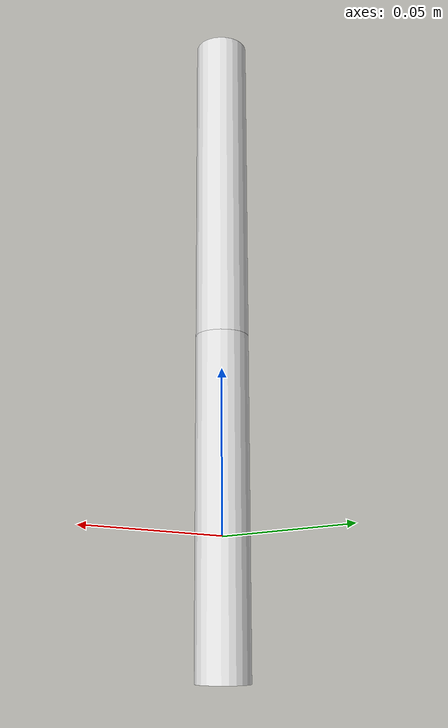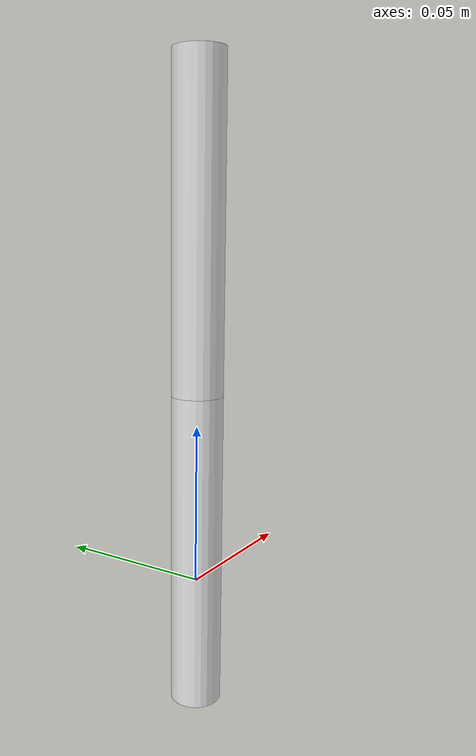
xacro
<?xml version="1.0"?>
<robot xmlns:xacro="http://www.ros.org/wiki/xacro" name="cable">

	<xacro:property name="radius" value="0.002" />
	<xacro:property name="base_length" value="0.01" />
	<xacro:property name="offset" value="-0.01" />

	<gazebo>
        <plugin name="gazebo_ros_control" filename="libgazebo_ros_control.so">
            <robotNamespace>/muscle</robotNamespace>
        </plugin>
    </gazebo>

    <link name="base_link">
    	<visual>
            <origin rpy="0 0 0" xyz="0 0 0"/>
            <geometry>
                <cylinder radius="${radius}" length="${base_length}"/>
            </geometry>
        </visual>
        <collision>
            <origin rpy="0 0 0" xyz="0 0 0"/>
            <geometry>
                <cylinder radius="${radius}" length="${base_length}"/>
            </geometry>
        </collision>
	</link>
    <gazebo reference="base_link">
        <kp>500.0</kp>
        <kd>500.0</kd>
        <mu1>10.0</mu1>
        <mu2>10.0</mu2>
        <material>Gazebo/White</material>
    </gazebo>
    <link name="base_link2">
    	<visual>
            <origin rpy="0 0 0" xyz="0 0 0"/>
            <geometry>
                <cylinder radius="${radius}" length="${base_length}"/>
            </geometry>
        </visual>
        <collision>
            <origin rpy="0 0 0" xyz="0 0 0"/>
            <geometry>
                <cylinder radius="${radius}" length="${base_length}"/>
            </geometry>
        </collision>
	</link>
    <gazebo reference="base_link2">
        <kp>500.0</kp>
        <kd>500.0</kd>
        <mu1>10.0</mu1>
        <mu2>10.0</mu2>
        <material>Gazebo/White</material>
    </gazebo>

    <joint name="base_link_joint" type="fixed">
    	<parent link="base_link"/>
	    <child link="base_link2"/>
	    <axis xyz="1 0 0"/>
	    <origin xyz="0 0 ${base_length}" rpy="0 0 0"/>
    </joint>

    <!-- Macro to create a hydraulic soft "muscle" actuator -->
    <!-- radius and length are of unactuated muscle, parent is name of parent link -->
    <xacro:macro name="muscle" params="radius length parent">
    	<link name="muscle_${parent}_0">
    		<visual>
    			<origin rpy="0 0 0" xyz="0 0 0"/>
    			<geometry>
    				<cylinder radius="${radius}" length="${length/2}"/>
    			</geometry>
        	</visual>
        	<collision>
		        <origin rpy="0 0 0" xyz="0 0 0"/>
		        <geometry>
		            <cylinder radius="${radius}" length="${length/2}"/>
		        </geometry>
		    </collision>
		    <inertial>
		        <origin xyz="0 0 0" rpy="0 0 0"/>
		        <mass value="0.01" />
		        <inertia ixx="2.43333333333e-05" ixy="0.0" ixz="0.0" iyy="2.43333333333e-05" iyz="0.0" izz="3.2e-05"/>
		    </inertial>
    	</link>
    	<gazebo reference="muscle_${parent}_0">
		    <kp>500.0</kp>
		    <kd>500.0</kd>
		    <mu1>10.0</mu1>
		    <mu2>10.0</mu2>
		    <material>Gazebo/White</material>
		</gazebo>

		<link name="muscle_${parent}_1">
    		<visual>
    			<origin rpy="0 0 0" xyz="0 0 0"/>
    			<geometry>
    				<cylinder radius="${radius}" length="${length/2}"/>
    			</geometry>
        	</visual>
        	<collision>
		        <origin rpy="0 0 0" xyz="0 0 0"/>
		        <geometry>
		            <cylinder radius="${radius}" length="${length/2}"/>
		        </geometry>
		    </collision>
		    <inertial>
		        <origin xyz="0 0 0" rpy="0 0 0"/>
		        <mass value="0.01" />
		        <inertia ixx="2.43333333333e-05" ixy="0.0" ixz="0.0" iyy="2.43333333333e-05" iyz="0.0" izz="3.2e-05"/>
		    </inertial>
    	</link>
    	<gazebo reference="muscle_${parent}_1">
		    <kp>500.0</kp>
		    <kd>500.0</kd>
		    <mu1>10.0</mu1>
		    <mu2>10.0</mu2>
		    <material>Gazebo/White</material>
		</gazebo>

		<joint name="muscle_${parent}_top_joint" type="fixed">
    		<parent link="${parent}"/>
		    <child link="muscle_${parent}_0"/>
	 	</joint>

    	<joint name="muscle_${parent}_mid_joint" type="prismatic">
    		<parent link="muscle_${parent}_0"/>
		    <child link="muscle_${parent}_1"/>
		    <axis xyz="0 0 1"/>
		    <origin xyz="0 0 ${length/2}" rpy="0 0 0"/>
		    <limit lower="${-0.19*length}" upper="0" velocity="${0.19*length}" effort="5"/>
    	</joint>

    	<transmission name="muscle_${parent}_tran">
	    <type>transmission_interface/SimpleTransmission</type>
		<joint name="muscle_${parent}_mid_joint">
	        <hardwareInterface>hardware_interface/EffortJointInterface</hardwareInterface>
	    </joint>
		<actuator name="muscle_${parent}_motor">
	        <mechanicalReduction>50</mechanicalReduction>
	    </actuator>
	</transmission>

    </xacro:macro>

    <xacro:muscle radius="0.008" length="0.200" parent="base_link2"/>

</robot>
